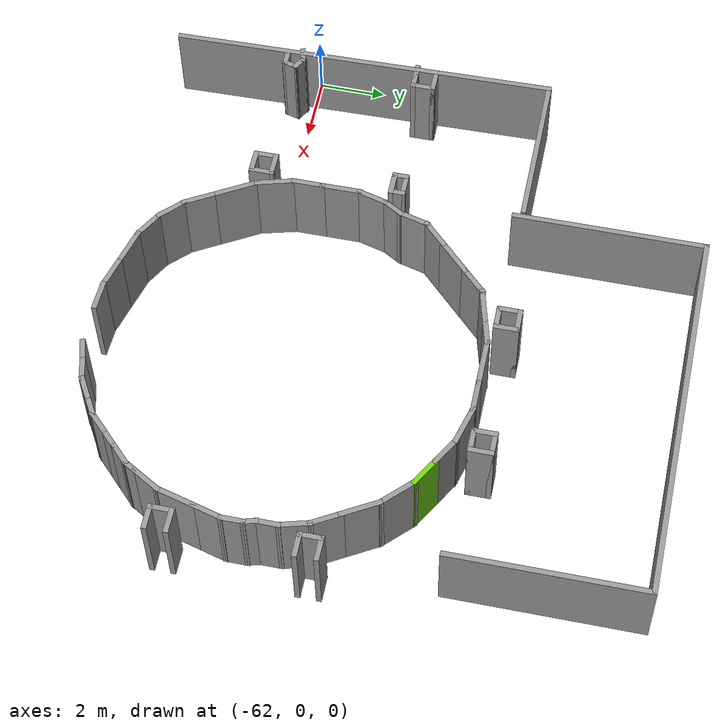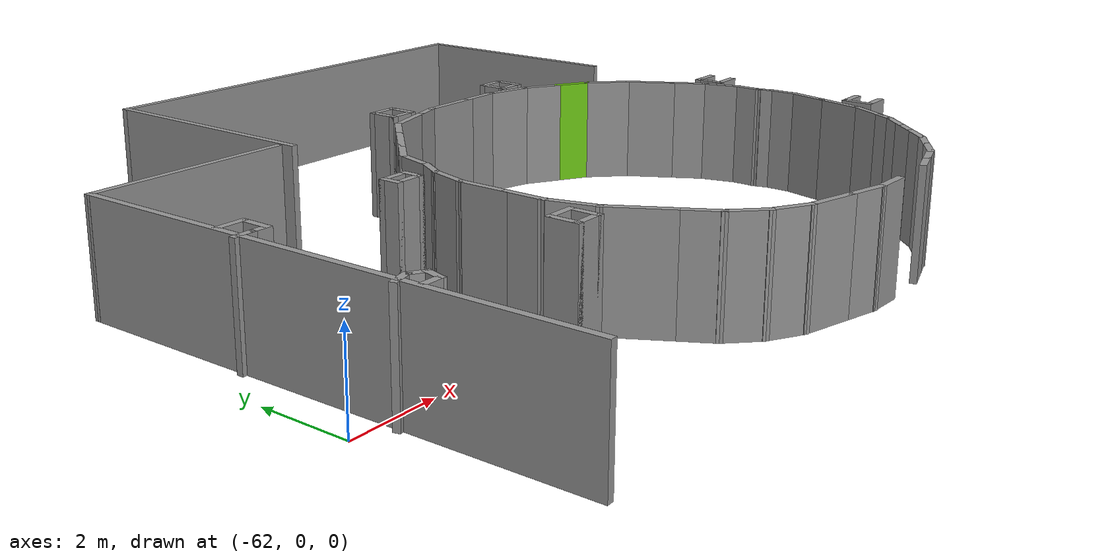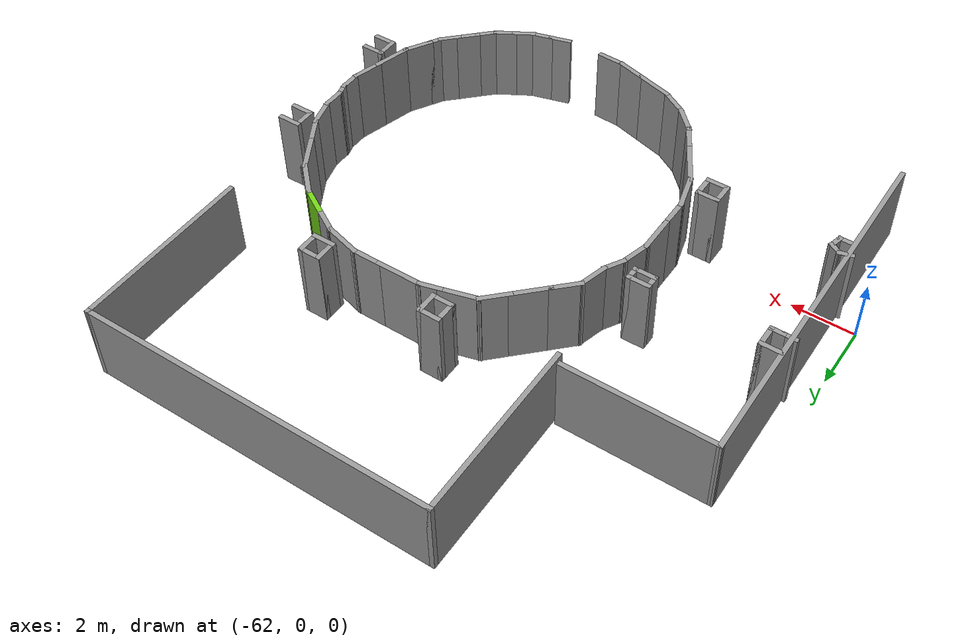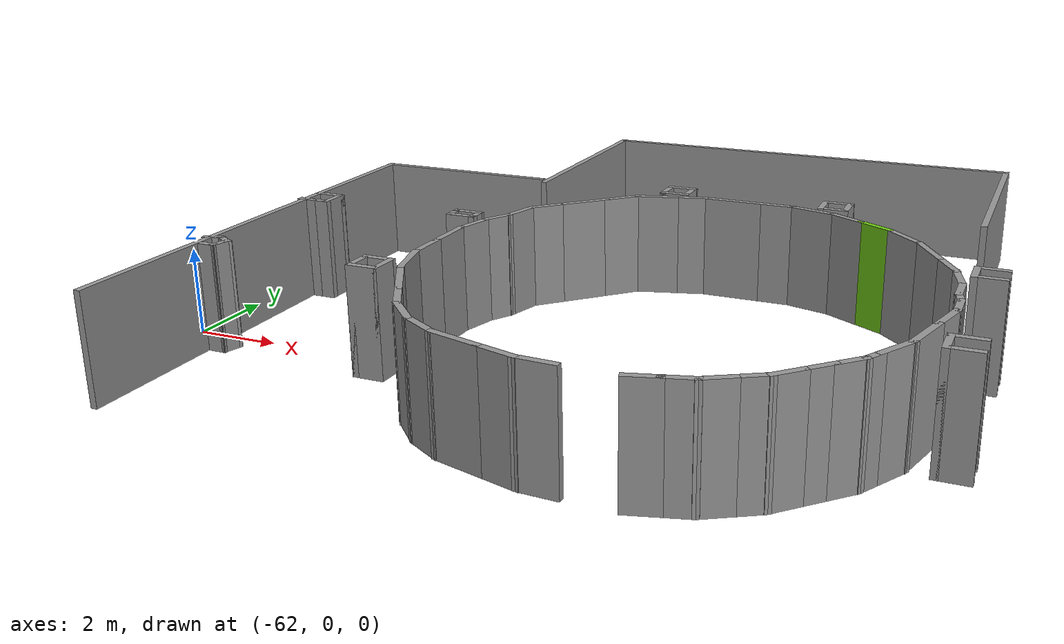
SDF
<sdf version="1.7">
 <model name="TD_n1">
  <pose>-6.74052 -9.30399 0 0 -0 0</pose>
  <link name="Wall_110">
   <collision name="Wall_110_Collision">
    <geometry><box><size>11.5656 0.15 2.5</size></box></geometry>
    <pose>0 0 1.25 0 -0 0</pose>
   </collision>
   <visual name="Wall_110_Visual">
    <pose>0 0 1.25 0 -0 0</pose>
    <geometry><box><size>11.5656 0.15 2.5</size></box></geometry>
    <material>
     <script><uri>file://media/materials/scripts/gazebo.material</uri><name>Gazebo/Grey</name></script>
     <ambient>1 1 1 1</ambient>
    </material>
    <meta><layer>0</layer></meta>
   </visual>
   <pose>-54.4598 10.8475 0 0 -0 -1.5552</pose>
  </link>
  <link name="Wall_113">
   <collision name="Wall_113_Collision">
    <geometry><box><size>4.75 0.15 2.5</size></box></geometry>
    <pose>0 0 1.25 0 -0 0</pose>
   </collision>
   <visual name="Wall_113_Visual">
    <pose>0 0 1.25 0 -0 0</pose>
    <geometry><box><size>4.75 0.15 2.5</size></box></geometry>
    <material>
     <script><uri>file://media/materials/scripts/gazebo.material</uri><name>Gazebo/Grey</name></script>
     <ambient>1 1 1 1</ambient>
    </material>
    <meta><layer>0</layer></meta>
   </visual>
   <pose>-52.2488 16.5545 0 0 -0 0</pose>
  </link>
  <link name="Wall_115">
   <collision name="Wall_115_Collision">
    <geometry><box><size>5.75 0.15 2.5</size></box></geometry>
    <pose>0 0 1.25 0 -0 0</pose>
   </collision>
   <visual name="Wall_115_Visual">
    <pose>0 0 1.25 0 -0 0</pose>
    <geometry><box><size>5.75 0.15 2.5</size></box></geometry>
    <material>
     <script><uri>file://media/materials/scripts/gazebo.material</uri><name>Gazebo/Grey</name></script>
     <ambient>1 1 1 1</ambient>
    </material>
    <meta><layer>0</layer></meta>
   </visual>
   <pose>-49.7376 19.1208 0 0 -0 -1.5708</pose>
  </link>
  <link name="Wall_117">
   <collision name="Wall_117_Collision">
    <geometry><box><size>11.25 0.15 2.5</size></box></geometry>
    <pose>0 0 1.25 0 -0 0</pose>
   </collision>
   <visual name="Wall_117_Visual">
    <pose>0 0 1.25 0 -0 0</pose>
    <geometry><box><size>11.25 0.15 2.5</size></box></geometry>
    <material>
     <script><uri>file://media/materials/scripts/gazebo.material</uri><name>Gazebo/Grey</name></script>
     <ambient>1 1 1 1</ambient>
    </material>
    <meta><layer>0</layer></meta>
   </visual>
   <pose>-44.1876 21.9208 0 0 -0 0</pose>
  </link>
  <link name="Wall_119">
   <collision name="Wall_119_Collision">
    <geometry><box><size>5.75 0.15 2.5</size></box></geometry>
    <pose>0 0 1.25 0 -0 0</pose>
   </collision>
   <visual name="Wall_119_Visual">
    <pose>0 0 1.25 0 -0 0</pose>
    <geometry><box><size>5.75 0.15 2.5</size></box></geometry>
    <material>
     <script><uri>file://media/materials/scripts/gazebo.material</uri><name>Gazebo/Grey</name></script>
     <ambient>1 1 1 1</ambient>
    </material>
    <meta><layer>0</layer></meta>
   </visual>
   <pose>-38.6376 19.1208 0 0 -0 -1.5708</pose>
  </link>
  <link name="Wall_138">
   <collision name="Wall_138_Collision">
    <geometry><box><size>0.75 0.15 2.5</size></box></geometry>
    <pose>0 0 1.25 0 -0 0</pose>
   </collision>
   <visual name="Wall_138_Visual">
    <pose>0 0 1.25 0 -0 0</pose>
    <geometry><box><size>0.75 0.15 2.5</size></box></geometry>
    <material>
     <script><uri>file://media/materials/scripts/gazebo.material</uri><name>Gazebo/Grey</name></script>
     <ambient>1 1 1 1</ambient>
    </material>
    <meta><layer>0</layer></meta>
   </visual>
   <pose>-42.7959 5.32178 0 0 -0 0.261799</pose>
  </link>
  <link name="Wall_139">
   <collision name="Wall_139_Collision">
    <geometry><box><size>0.75 0.15 2.5</size></box></geometry>
    <pose>0 0 1.25 0 -0 0</pose>
   </collision>
   <visual name="Wall_139_Visual">
    <pose>0 0 1.25 0 -0 0</pose>
    <geometry><box><size>0.75 0.15 2.5</size></box></geometry>
    <material>
     <script><uri>file://media/materials/scripts/gazebo.material</uri><name>Gazebo/Grey</name></script>
     <ambient>1 1 1 1</ambient>
    </material>
    <meta><layer>0</layer></meta>
   </visual>
   <pose>-42.2164 5.47707 0 0 -0 0.261799</pose>
  </link>
  <link name="Wall_140">
   <collision name="Wall_140_Collision">
    <geometry><box><size>0.75 0.15 2.5</size></box></geometry>
    <pose>0 0 1.25 0 -0 0</pose>
   </collision>
   <visual name="Wall_140_Visual">
    <pose>0 0 1.25 0 -0 0</pose>
    <geometry><box><size>0.75 0.15 2.5</size></box></geometry>
    <material>
     <script><uri>file://media/materials/scripts/gazebo.material</uri><name>Gazebo/Grey</name></script>
     <ambient>1 1 1 1</ambient>
    </material>
    <meta><layer>0</layer></meta>
   </visual>
   <pose>-41.6668 5.70472 0 0 -0 0.523599</pose>
  </link>
  <link name="Wall_141">
   <collision name="Wall_141_Collision">
    <geometry><box><size>0.75 0.15 2.5</size></box></geometry>
    <pose>0 0 1.25 0 -0 0</pose>
   </collision>
   <visual name="Wall_141_Visual">
    <pose>0 0 1.25 0 -0 0</pose>
    <geometry><box><size>0.75 0.15 2.5</size></box></geometry>
    <material>
     <script><uri>file://media/materials/scripts/gazebo.material</uri><name>Gazebo/Grey</name></script>
     <ambient>1 1 1 1</ambient>
    </material>
    <meta><layer>0</layer></meta>
   </visual>
   <pose>-41.1472 6.00472 0 0 -0 0.523599</pose>
  </link>
  <link name="Wall_142">
   <collision name="Wall_142_Collision">
    <geometry><box><size>0.75 0.15 2.5</size></box></geometry>
    <pose>0 0 1.25 0 -0 0</pose>
   </collision>
   <visual name="Wall_142_Visual">
    <pose>0 0 1.25 0 -0 0</pose>
    <geometry><box><size>0.75 0.15 2.5</size></box></geometry>
    <material>
     <script><uri>file://media/materials/scripts/gazebo.material</uri><name>Gazebo/Grey</name></script>
     <ambient>1 1 1 1</ambient>
    </material>
    <meta><layer>0</layer></meta>
   </visual>
   <pose>-40.6752 6.36685 0 0 -0 0.785398</pose>
  </link>
  <link name="Wall_143">
   <collision name="Wall_143_Collision">
    <geometry><box><size>0.75 0.15 2.5</size></box></geometry>
    <pose>0 0 1.25 0 -0 0</pose>
   </collision>
   <visual name="Wall_143_Visual">
    <pose>0 0 1.25 0 -0 0</pose>
    <geometry><box><size>0.75 0.15 2.5</size></box></geometry>
    <material>
     <script><uri>file://media/materials/scripts/gazebo.material</uri><name>Gazebo/Grey</name></script>
     <ambient>1 1 1 1</ambient>
    </material>
    <meta><layer>0</layer></meta>
   </visual>
   <pose>-40.251 6.79111 0 0 -0 0.785398</pose>
  </link>
  <link name="Wall_144">
   <collision name="Wall_144_Collision">
    <geometry><box><size>0.75 0.15 2.5</size></box></geometry>
    <pose>0 0 1.25 0 -0 0</pose>
   </collision>
   <visual name="Wall_144_Visual">
    <pose>0 0 1.25 0 -0 0</pose>
    <geometry><box><size>0.75 0.15 2.5</size></box></geometry>
    <material>
     <script><uri>file://media/materials/scripts/gazebo.material</uri><name>Gazebo/Grey</name></script>
     <ambient>1 1 1 1</ambient>
    </material>
    <meta><layer>0</layer></meta>
   </visual>
   <pose>-39.8267 7.21538 0 0 -0 0.785398</pose>
  </link>
  <link name="Wall_145">
   <collision name="Wall_145_Collision">
    <geometry><box><size>0.5 0.15 2.5</size></box></geometry>
    <pose>0 0 1.25 0 -0 0</pose>
   </collision>
   <visual name="Wall_145_Visual">
    <pose>0 0 1.25 0 -0 0</pose>
    <geometry><box><size>0.5 0.15 2.5</size></box></geometry>
    <material>
     <script><uri>file://media/materials/scripts/gazebo.material</uri><name>Gazebo/Grey</name></script>
     <ambient>1 1 1 1</ambient>
    </material>
    <meta><layer>0</layer></meta>
   </visual>
   <pose>-39.5271 7.57906 0 0 -0 1.0472</pose>
  </link>
  <link name="Wall_146">
   <collision name="Wall_146_Collision">
    <geometry><box><size>1 0.15 2.5</size></box></geometry>
    <pose>0 0 1.25 0 -0 0</pose>
   </collision>
   <visual name="Wall_146_Visual">
    <pose>0 0 1.25 0 -0 0</pose>
    <geometry><box><size>1 0.15 2.5</size></box></geometry>
    <material>
     <script><uri>file://media/materials/scripts/gazebo.material</uri><name>Gazebo/Grey</name></script>
     <ambient>1 1 1 1</ambient>
    </material>
    <meta><layer>0</layer></meta>
   </visual>
   <pose>-39.2271 8.09868 0 0 -0 1.0472</pose>
  </link>
  <link name="Wall_147">
   <collision name="Wall_147_Collision">
    <geometry><box><size>1.25 0.15 2.5</size></box></geometry>
    <pose>0 0 1.25 0 -0 0</pose>
   </collision>
   <visual name="Wall_147_Visual">
    <pose>0 0 1.25 0 -0 0</pose>
    <geometry><box><size>1.25 0.15 2.5</size></box></geometry>
    <material>
     <script><uri>file://media/materials/scripts/gazebo.material</uri><name>Gazebo/Grey</name></script>
     <ambient>1 1 1 1</ambient>
    </material>
    <meta><layer>0</layer></meta>
   </visual>
   <pose>-38.8722 8.998 0 0 -0 1.309</pose>
  </link>
  <link name="Wall_148">
   <collision name="Wall_148_Collision">
    <geometry><box><size>1 0.15 2.5</size></box></geometry>
    <pose>0 0 1.25 0 -0 0</pose>
   </collision>
   <visual name="Wall_148_Visual">
    <pose>0 0 1.25 0 -0 0</pose>
    <geometry><box><size>1 0.15 2.5</size></box></geometry>
    <material>
     <script><uri>file://media/materials/scripts/gazebo.material</uri><name>Gazebo/Grey</name></script>
     <ambient>1 1 1 1</ambient>
    </material>
    <meta><layer>0</layer></meta>
   </visual>
   <pose>-38.6199 9.93978 0 0 -0 1.309</pose>
  </link>
  <link name="Wall_149">
   <collision name="Wall_149_Collision">
    <geometry><box><size>0.75 0.15 2.5</size></box></geometry>
    <pose>0 0 1.25 0 -0 0</pose>
   </collision>
   <visual name="Wall_149_Visual">
    <pose>0 0 1.25 0 -0 0</pose>
    <geometry><box><size>0.75 0.15 2.5</size></box></geometry>
    <material>
     <script><uri>file://media/materials/scripts/gazebo.material</uri><name>Gazebo/Grey</name></script>
     <ambient>1 1 1 1</ambient>
    </material>
    <meta><layer>0</layer></meta>
   </visual>
   <pose>-38.5099 10.6503 0 0 -0 1.5708</pose>
  </link>
  <link name="Wall_150">
   <collision name="Wall_150_Collision">
    <geometry><box><size>0.5 0.15 2.5</size></box></geometry>
    <pose>0 0 1.25 0 -0 0</pose>
   </collision>
   <visual name="Wall_150_Visual">
    <pose>0 0 1.25 0 -0 0</pose>
    <geometry><box><size>0.5 0.15 2.5</size></box></geometry>
    <material>
     <script><uri>file://media/materials/scripts/gazebo.material</uri><name>Gazebo/Grey</name></script>
     <ambient>1 1 1 1</ambient>
    </material>
    <meta><layer>0</layer></meta>
   </visual>
   <pose>-38.5552 11.1193 0 0 -0 1.8326</pose>
  </link>
  <link name="Wall_153">
   <collision name="Wall_153_Collision">
    <geometry><box><size>0.75 0.15 2.5</size></box></geometry>
    <pose>0 0 1.25 0 -0 0</pose>
   </collision>
   <visual name="Wall_153_Visual">
    <pose>0 0 1.25 0 -0 0</pose>
    <geometry><box><size>0.75 0.15 2.5</size></box></geometry>
    <material>
     <script><uri>file://media/materials/scripts/gazebo.material</uri><name>Gazebo/Grey</name></script>
     <ambient>1 1 1 1</ambient>
    </material>
    <meta><layer>0</layer></meta>
   </visual>
   <pose>-38.6005 11.5884 0 0 -0 1.5708</pose>
  </link>
  <link name="Wall_154">
   <collision name="Wall_154_Collision">
    <geometry><box><size>1 0.15 2.5</size></box></geometry>
    <pose>0 0 1.25 0 -0 0</pose>
   </collision>
   <visual name="Wall_154_Visual">
    <pose>0 0 1.25 0 -0 0</pose>
    <geometry><box><size>1 0.15 2.5</size></box></geometry>
    <material>
     <script><uri>file://media/materials/scripts/gazebo.material</uri><name>Gazebo/Grey</name></script>
     <ambient>1 1 1 1</ambient>
    </material>
    <meta><layer>0</layer></meta>
   </visual>
   <pose>-38.7105 12.2989 0 0 -0 1.8326</pose>
  </link>
  <link name="Wall_155">
   <collision name="Wall_155_Collision">
    <geometry><box><size>1 0.15 2.5</size></box></geometry>
    <pose>0 0 1.25 0 -0 0</pose>
   </collision>
   <visual name="Wall_155_Visual">
    <pose>0 0 1.25 0 -0 0</pose>
    <geometry><box><size>1 0.15 2.5</size></box></geometry>
    <material>
     <script><uri>file://media/materials/scripts/gazebo.material</uri><name>Gazebo/Grey</name></script>
     <ambient>1 1 1 1</ambient>
    </material>
    <meta><layer>0</layer></meta>
   </visual>
   <pose>-39.033 13.0775 0 0 -0 2.0944</pose>
  </link>
  <link name="Wall_156">
   <collision name="Wall_156_Collision">
    <geometry><box><size>1.25 0.15 2.5</size></box></geometry>
    <pose>0 0 1.25 0 -0 0</pose>
   </collision>
   <visual name="Wall_156_Visual">
    <pose>0 0 1.25 0 -0 0</pose>
    <geometry><box><size>1.25 0.15 2.5</size></box></geometry>
    <material>
     <script><uri>file://media/materials/scripts/gazebo.material</uri><name>Gazebo/Grey</name></script>
     <ambient>1 1 1 1</ambient>
    </material>
    <meta><layer>0</layer></meta>
   </visual>
   <pose>-39.5205 13.9218 0 0 -0 2.0944</pose>
  </link>
  <link name="Wall_157">
   <collision name="Wall_157_Collision">
    <geometry><box><size>1.25 0.15 2.5</size></box></geometry>
    <pose>0 0 1.25 0 -0 0</pose>
   </collision>
   <visual name="Wall_157_Visual">
    <pose>0 0 1.25 0 -0 0</pose>
    <geometry><box><size>1.25 0.15 2.5</size></box></geometry>
    <material>
     <script><uri>file://media/materials/scripts/gazebo.material</uri><name>Gazebo/Grey</name></script>
     <ambient>1 1 1 1</ambient>
    </material>
    <meta><layer>0</layer></meta>
   </visual>
   <pose>-40.1844 14.7871 0 0 -0 2.35619</pose>
  </link>
  <link name="Wall_158">
   <collision name="Wall_158_Collision">
    <geometry><box><size>1 0.15 2.5</size></box></geometry>
    <pose>0 0 1.25 0 -0 0</pose>
   </collision>
   <visual name="Wall_158_Visual">
    <pose>0 0 1.25 0 -0 0</pose>
    <geometry><box><size>1 0.15 2.5</size></box></geometry>
    <material>
     <script><uri>file://media/materials/scripts/gazebo.material</uri><name>Gazebo/Grey</name></script>
     <ambient>0.45098 0.823529 0.0862745 1</ambient>
    </material>
    <meta><layer>0</layer></meta>
   </visual>
   <pose>-40.9413 15.3885 0 0 -0 2.61799</pose>
  </link>
  <link name="Wall_159">
   <collision name="Wall_159_Collision">
    <geometry><box><size>1 0.15 2.5</size></box></geometry>
    <pose>0 0 1.25 0 -0 0</pose>
   </collision>
   <visual name="Wall_159_Visual">
    <pose>0 0 1.25 0 -0 0</pose>
    <geometry><box><size>1 0.15 2.5</size></box></geometry>
    <material>
     <script><uri>file://media/materials/scripts/gazebo.material</uri><name>Gazebo/Grey</name></script>
     <ambient>1 1 1 1</ambient>
    </material>
    <meta><layer>0</layer></meta>
   </visual>
   <pose>-41.6775 15.8135 0 0 -0 2.61799</pose>
  </link>
  <link name="Wall_160">
   <collision name="Wall_160_Collision">
    <geometry><box><size>1.25 0.15 2.5</size></box></geometry>
    <pose>0 0 1.25 0 -0 0</pose>
   </collision>
   <visual name="Wall_160_Visual">
    <pose>0 0 1.25 0 -0 0</pose>
    <geometry><box><size>1.25 0.15 2.5</size></box></geometry>
    <material>
     <script><uri>file://media/materials/scripts/gazebo.material</uri><name>Gazebo/Grey</name></script>
     <ambient>1 1 1 1</ambient>
    </material>
    <meta><layer>0</layer></meta>
   </visual>
   <pose>-42.5768 16.1683 0 0 -0 2.87979</pose>
  </link>
  <link name="Wall_161">
   <collision name="Wall_161_Collision">
    <geometry><box><size>1 0.15 2.5</size></box></geometry>
    <pose>0 0 1.25 0 -0 0</pose>
   </collision>
   <visual name="Wall_161_Visual">
    <pose>0 0 1.25 0 -0 0</pose>
    <geometry><box><size>1 0.15 2.5</size></box></geometry>
    <material>
     <script><uri>file://media/materials/scripts/gazebo.material</uri><name>Gazebo/Grey</name></script>
     <ambient>1 1 1 1</ambient>
    </material>
    <meta><layer>0</layer></meta>
   </visual>
   <pose>-43.533 16.3107 0 0 -0 3.14159</pose>
  </link>
  <link name="Wall_162">
   <collision name="Wall_162_Collision">
    <geometry><box><size>1.5 0.15 2.5</size></box></geometry>
    <pose>0 0 1.25 0 -0 0</pose>
   </collision>
   <visual name="Wall_162_Visual">
    <pose>0 0 1.25 0 -0 0</pose>
    <geometry><box><size>1.5 0.15 2.5</size></box></geometry>
    <material>
     <script><uri>file://media/materials/scripts/gazebo.material</uri><name>Gazebo/Grey</name></script>
     <ambient>1 1 1 1</ambient>
    </material>
    <meta><layer>0</layer></meta>
   </visual>
   <pose>-44.633 16.3107 0 0 -0 3.14159</pose>
  </link>
  <link name="Wall_163">
   <collision name="Wall_163_Collision">
    <geometry><box><size>0.75 0.15 2.5</size></box></geometry>
    <pose>0 0 1.25 0 -0 0</pose>
   </collision>
   <visual name="Wall_163_Visual">
    <pose>0 0 1.25 0 -0 0</pose>
    <geometry><box><size>0.75 0.15 2.5</size></box></geometry>
    <material>
     <script><uri>file://media/materials/scripts/gazebo.material</uri><name>Gazebo/Grey</name></script>
     <ambient>1 1 1 1</ambient>
    </material>
    <meta><layer>0</layer></meta>
   </visual>
   <pose>-45.5978 16.233 0 0 -0 -2.87979</pose>
  </link>
  <link name="Wall_164">
   <collision name="Wall_164_Collision">
    <geometry><box><size>1.25 0.15 2.5</size></box></geometry>
    <pose>0 0 1.25 0 -0 0</pose>
   </collision>
   <visual name="Wall_164_Visual">
    <pose>0 0 1.25 0 -0 0</pose>
    <geometry><box><size>1.25 0.15 2.5</size></box></geometry>
    <material>
     <script><uri>file://media/materials/scripts/gazebo.material</uri><name>Gazebo/Grey</name></script>
     <ambient>1 1 1 1</ambient>
    </material>
    <meta><layer>0</layer></meta>
   </visual>
   <pose>-46.4189 16.013 0 0 -0 -2.87979</pose>
  </link>
  <link name="Wall_165">
   <collision name="Wall_165_Collision">
    <geometry><box><size>1 0.15 2.5</size></box></geometry>
    <pose>0 0 1.25 0 -0 0</pose>
   </collision>
   <visual name="Wall_165_Visual">
    <pose>0 0 1.25 0 -0 0</pose>
    <geometry><box><size>1 0.15 2.5</size></box></geometry>
    <material>
     <script><uri>file://media/materials/scripts/gazebo.material</uri><name>Gazebo/Grey</name></script>
     <ambient>1 1 1 1</ambient>
    </material>
    <meta><layer>0</layer></meta>
   </visual>
   <pose>-47.2506 15.5702 0 0 -0 -2.35619</pose>
  </link>
  <link name="Wall_166">
   <collision name="Wall_166_Collision">
    <geometry><box><size>1.25 0.15 2.5</size></box></geometry>
    <pose>0 0 1.25 0 -0 0</pose>
   </collision>
   <visual name="Wall_166_Visual">
    <pose>0 0 1.25 0 -0 0</pose>
    <geometry><box><size>1.25 0.15 2.5</size></box></geometry>
    <material>
     <script><uri>file://media/materials/scripts/gazebo.material</uri><name>Gazebo/Grey</name></script>
     <ambient>1 1 1 1</ambient>
    </material>
    <meta><layer>0</layer></meta>
   </visual>
   <pose>-47.9401 14.8807 0 0 -0 -2.35619</pose>
  </link>
  <link name="Wall_167">
   <collision name="Wall_167_Collision">
    <geometry><box><size>1 0.15 2.5</size></box></geometry>
    <pose>0 0 1.25 0 -0 0</pose>
   </collision>
   <visual name="Wall_167_Visual">
    <pose>0 0 1.25 0 -0 0</pose>
    <geometry><box><size>1 0.15 2.5</size></box></geometry>
    <material>
     <script><uri>file://media/materials/scripts/gazebo.material</uri><name>Gazebo/Grey</name></script>
     <ambient>1 1 1 1</ambient>
    </material>
    <meta><layer>0</layer></meta>
   </visual>
   <pose>-48.6295 14.1913 0 0 -0 -2.35619</pose>
  </link>
  <link name="Wall_168">
   <collision name="Wall_168_Collision">
    <geometry><box><size>1 0.15 2.5</size></box></geometry>
    <pose>0 0 1.25 0 -0 0</pose>
   </collision>
   <visual name="Wall_168_Visual">
    <pose>0 0 1.25 0 -0 0</pose>
    <geometry><box><size>1 0.15 2.5</size></box></geometry>
    <material>
     <script><uri>file://media/materials/scripts/gazebo.material</uri><name>Gazebo/Grey</name></script>
     <ambient>1 1 1 1</ambient>
    </material>
    <meta><layer>0</layer></meta>
   </visual>
   <pose>-49.04 13.4803 0 0 -0 -1.8326</pose>
  </link>
  <link name="Wall_169">
   <collision name="Wall_169_Collision">
    <geometry><box><size>0.75 0.15 2.5</size></box></geometry>
    <pose>0 0 1.25 0 -0 0</pose>
   </collision>
   <visual name="Wall_169_Visual">
    <pose>0 0 1.25 0 -0 0</pose>
    <geometry><box><size>0.75 0.15 2.5</size></box></geometry>
    <material>
     <script><uri>file://media/materials/scripts/gazebo.material</uri><name>Gazebo/Grey</name></script>
     <ambient>1 1 1 1</ambient>
    </material>
    <meta><layer>0</layer></meta>
   </visual>
   <pose>-49.3 12.8099 0 0 -0 -2.0944</pose>
  </link>
  <link name="Wall_170">
   <collision name="Wall_170_Collision">
    <geometry><box><size>1 0.15 2.5</size></box></geometry>
    <pose>0 0 1.25 0 -0 0</pose>
   </collision>
   <visual name="Wall_170_Visual">
    <pose>0 0 1.25 0 -0 0</pose>
    <geometry><box><size>1 0.15 2.5</size></box></geometry>
    <material>
     <script><uri>file://media/materials/scripts/gazebo.material</uri><name>Gazebo/Grey</name></script>
     <ambient>1 1 1 1</ambient>
    </material>
    <meta><layer>0</layer></meta>
   </visual>
   <pose>-49.56 12.1396 0 0 -0 -1.8326</pose>
  </link>
  <link name="Wall_171">
   <collision name="Wall_171_Collision">
    <geometry><box><size>1.25 0.15 2.5</size></box></geometry>
    <pose>0 0 1.25 0 -0 0</pose>
   </collision>
   <visual name="Wall_171_Visual">
    <pose>0 0 1.25 0 -0 0</pose>
    <geometry><box><size>1.25 0.15 2.5</size></box></geometry>
    <material>
     <script><uri>file://media/materials/scripts/gazebo.material</uri><name>Gazebo/Grey</name></script>
     <ambient>1 1 1 1</ambient>
    </material>
    <meta><layer>0</layer></meta>
   </visual>
   <pose>-49.67 11.1791 0 0 -0 -1.5708</pose>
  </link>
  <link name="Wall_172">
   <collision name="Wall_172_Collision">
    <geometry><box><size>1 0.15 2.5</size></box></geometry>
    <pose>0 0 1.25 0 -0 0</pose>
   </collision>
   <visual name="Wall_172_Visual">
    <pose>0 0 1.25 0 -0 0</pose>
    <geometry><box><size>1 0.15 2.5</size></box></geometry>
    <material>
     <script><uri>file://media/materials/scripts/gazebo.material</uri><name>Gazebo/Grey</name></script>
     <ambient>1 1 1 1</ambient>
    </material>
    <meta><layer>0</layer></meta>
   </visual>
   <pose>-49.67 10.2041 0 0 -0 -1.5708</pose>
  </link>
  <link name="Wall_173">
   <collision name="Wall_173_Collision">
    <geometry><box><size>1.25 0.15 2.5</size></box></geometry>
    <pose>0 0 1.25 0 -0 0</pose>
   </collision>
   <visual name="Wall_173_Visual">
    <pose>0 0 1.25 0 -0 0</pose>
    <geometry><box><size>1.25 0.15 2.5</size></box></geometry>
    <material>
     <script><uri>file://media/materials/scripts/gazebo.material</uri><name>Gazebo/Grey</name></script>
     <ambient>1 1 1 1</ambient>
    </material>
    <meta><layer>0</layer></meta>
   </visual>
   <pose>-49.5277 9.24783 0 0 -0 -1.309</pose>
  </link>
  <link name="Wall_174">
   <collision name="Wall_174_Collision">
    <geometry><box><size>1.5 0.15 2.5</size></box></geometry>
    <pose>0 0 1.25 0 -0 0</pose>
   </collision>
   <visual name="Wall_174_Visual">
    <pose>0 0 1.25 0 -0 0</pose>
    <geometry><box><size>1.5 0.15 2.5</size></box></geometry>
    <material>
     <script><uri>file://media/materials/scripts/gazebo.material</uri><name>Gazebo/Grey</name></script>
     <ambient>1 1 1 1</ambient>
    </material>
    <meta><layer>0</layer></meta>
   </visual>
   <pose>-49.0478 8.13201 0 0 -0 -1.0472</pose>
  </link>
  <link name="Wall_178">
   <collision name="Wall_178_Collision">
    <geometry><box><size>1 0.15 2.5</size></box></geometry>
    <pose>0 0 1.25 0 -0 0</pose>
   </collision>
   <visual name="Wall_178_Visual">
    <pose>0 0 1.25 0 -0 0</pose>
    <geometry><box><size>1 0.15 2.5</size></box></geometry>
    <material>
     <script><uri>file://media/materials/scripts/gazebo.material</uri><name>Gazebo/Grey</name></script>
     <ambient>1 1 1 1</ambient>
    </material>
    <meta><layer>0</layer></meta>
   </visual>
   <pose>-48.4978 7.17938 0 0 -0 -1.0472</pose>
  </link>
  <link name="Wall_179">
   <collision name="Wall_179_Collision">
    <geometry><box><size>1 0.15 2.5</size></box></geometry>
    <pose>0 0 1.25 0 -0 0</pose>
   </collision>
   <visual name="Wall_179_Visual">
    <pose>0 0 1.25 0 -0 0</pose>
    <geometry><box><size>1 0.15 2.5</size></box></geometry>
    <material>
     <script><uri>file://media/materials/scripts/gazebo.material</uri><name>Gazebo/Grey</name></script>
     <ambient>1 1 1 1</ambient>
    </material>
    <meta><layer>0</layer></meta>
   </visual>
   <pose>-47.9848 6.5108 0 0 -0 -0.785398</pose>
  </link>
  <link name="Wall_180">
   <collision name="Wall_180_Collision">
    <geometry><box><size>1 0.15 2.5</size></box></geometry>
    <pose>0 0 1.25 0 -0 0</pose>
   </collision>
   <visual name="Wall_180_Visual">
    <pose>0 0 1.25 0 -0 0</pose>
    <geometry><box><size>1 0.15 2.5</size></box></geometry>
    <material>
     <script><uri>file://media/materials/scripts/gazebo.material</uri><name>Gazebo/Grey</name></script>
     <ambient>1 1 1 1</ambient>
    </material>
    <meta><layer>0</layer></meta>
   </visual>
   <pose>-47.3162 5.99778 0 0 -0 -0.523599</pose>
  </link>
  <link name="Wall_181">
   <collision name="Wall_181_Collision">
    <geometry><box><size>1.25 0.15 2.5</size></box></geometry>
    <pose>0 0 1.25 0 -0 0</pose>
   </collision>
   <visual name="Wall_181_Visual">
    <pose>0 0 1.25 0 -0 0</pose>
    <geometry><box><size>1.25 0.15 2.5</size></box></geometry>
    <material>
     <script><uri>file://media/materials/scripts/gazebo.material</uri><name>Gazebo/Grey</name></script>
     <ambient>1 1 1 1</ambient>
    </material>
    <meta><layer>0</layer></meta>
   </visual>
   <pose>-46.4169 5.64293 0 0 -0 -0.261799</pose>
  </link>
  <link name="Wall_182">
   <collision name="Wall_182_Collision">
    <geometry><box><size>1 0.15 2.5</size></box></geometry>
    <pose>0 0 1.25 0 -0 0</pose>
   </collision>
   <visual name="Wall_182_Visual">
    <pose>0 0 1.25 0 -0 0</pose>
    <geometry><box><size>1 0.15 2.5</size></box></geometry>
    <material>
     <script><uri>file://media/materials/scripts/gazebo.material</uri><name>Gazebo/Grey</name></script>
     <ambient>1 1 1 1</ambient>
    </material>
    <meta><layer>0</layer></meta>
   </visual>
   <pose>-45.4751 5.39058 0 0 -0 -0.261799</pose>
  </link>
  <link name="Wall_183">
   <collision name="Wall_183_Collision">
    <geometry><box><size>0.92973 0.15 2.5</size></box></geometry>
    <pose>0 0 1.25 0 -0 0</pose>
   </collision>
   <visual name="Wall_183_Visual">
    <pose>0 0 1.25 0 -0 0</pose>
    <geometry><box><size>0.92973 0.15 2.5</size></box></geometry>
    <material>
     <script><uri>file://media/materials/scripts/gazebo.material</uri><name>Gazebo/Grey</name></script>
     <ambient>1 1 1 1</ambient>
    </material>
    <meta><layer>0</layer></meta>
   </visual>
   <pose>-44.6752 5.26236 0 0 -0 -0.04676</pose>
  </link>
  <link name="Wall_193">
   <collision name="Wall_193_Collision">
    <geometry><box><size>0.5 0.15 2.5</size></box></geometry>
    <pose>0 0 1.25 0 -0 0</pose>
   </collision>
   <visual name="Wall_193_Visual">
    <pose>0 0 1.25 0 -0 0</pose>
    <geometry><box><size>0.5 0.15 2.5</size></box></geometry>
    <material>
     <script><uri>file://media/materials/scripts/gazebo.material</uri><name>Gazebo/Grey</name></script>
     <ambient>1 1 1 1</ambient>
    </material>
    <meta><layer>0</layer></meta>
   </visual>
   <pose>-54.1547 8.51267 0 0 -0 0</pose>
  </link>
  <link name="Wall_194">
   <collision name="Wall_194_Collision">
    <geometry><box><size>0.5 0.15 2.5</size></box></geometry>
    <pose>0 0 1.25 0 -0 0</pose>
   </collision>
   <visual name="Wall_194_Visual">
    <pose>0 0 1.25 0 -0 0</pose>
    <geometry><box><size>0.5 0.15 2.5</size></box></geometry>
    <material>
     <script><uri>file://media/materials/scripts/gazebo.material</uri><name>Gazebo/Grey</name></script>
     <ambient>1 1 1 1</ambient>
    </material>
    <meta><layer>0</layer></meta>
   </visual>
   <pose>-53.9344 8.68171 0 0 -0 1.309</pose>
  </link>
  <link name="Wall_195">
   <collision name="Wall_195_Collision">
    <geometry><box><size>0.5 0.15 2.5</size></box></geometry>
    <pose>0 0 1.25 0 -0 0</pose>
   </collision>
   <visual name="Wall_195_Visual">
    <pose>0 0 1.25 0 -0 0</pose>
    <geometry><box><size>0.5 0.15 2.5</size></box></geometry>
    <material>
     <script><uri>file://media/materials/scripts/gazebo.material</uri><name>Gazebo/Grey</name></script>
     <ambient>1 1 1 1</ambient>
    </material>
    <meta><layer>0</layer></meta>
   </visual>
   <pose>-54.0406 8.93825 0 0 -0 2.61799</pose>
  </link>
  <link name="Wall_196">
   <collision name="Wall_196_Collision">
    <geometry><box><size>0.15 0.15 2.5</size></box></geometry>
    <pose>0 0 1.25 0 -0 0</pose>
   </collision>
   <visual name="Wall_196_Visual">
    <pose>0 0 1.25 0 -0 0</pose>
    <geometry><box><size>0.15 0.15 2.5</size></box></geometry>
    <material>
     <script><uri>file://media/materials/scripts/gazebo.material</uri><name>Gazebo/Grey</name></script>
     <ambient>1 1 1 1</ambient>
    </material>
    <meta><layer>0</layer></meta>
   </visual>
   <pose>-54.1922 9.02575 0 0 -0 0</pose>
  </link>
  <link name="Wall_197">
   <collision name="Wall_197_Collision">
    <geometry><box><size>0.5 0.15 2.5</size></box></geometry>
    <pose>0 0 1.25 0 -0 0</pose>
   </collision>
   <visual name="Wall_197_Visual">
    <pose>0 0 1.25 0 -0 0</pose>
    <geometry><box><size>0.5 0.15 2.5</size></box></geometry>
    <material>
     <script><uri>file://media/materials/scripts/gazebo.material</uri><name>Gazebo/Grey</name></script>
     <ambient>1 1 1 1</ambient>
    </material>
    <meta><layer>0</layer></meta>
   </visual>
   <pose>-54.3612 8.98045 0 0 -0 -2.87979</pose>
  </link>
  <link name="Wall_199">
   <collision name="Wall_199_Collision">
    <geometry><box><size>0.75 0.15 2.5</size></box></geometry>
    <pose>0 0 1.25 0 -0 0</pose>
   </collision>
   <visual name="Wall_199_Visual">
    <pose>0 0 1.25 0 -0 0</pose>
    <geometry><box><size>0.75 0.15 2.5</size></box></geometry>
    <material>
     <script><uri>file://media/materials/scripts/gazebo.material</uri><name>Gazebo/Grey</name></script>
     <ambient>1 1 1 1</ambient>
    </material>
    <meta><layer>0</layer></meta>
   </visual>
   <pose>-54.1817 13.1057 0 0 -0 0</pose>
  </link>
  <link name="Wall_200">
   <collision name="Wall_200_Collision">
    <geometry><box><size>0.75 0.15 2.5</size></box></geometry>
    <pose>0 0 1.25 0 -0 0</pose>
   </collision>
   <visual name="Wall_200_Visual">
    <pose>0 0 1.25 0 -0 0</pose>
    <geometry><box><size>0.75 0.15 2.5</size></box></geometry>
    <material>
     <script><uri>file://media/materials/scripts/gazebo.material</uri><name>Gazebo/Grey</name></script>
     <ambient>1 1 1 1</ambient>
    </material>
    <meta><layer>0</layer></meta>
   </visual>
   <pose>-53.8817 12.8057 0 0 -0 -1.5708</pose>
  </link>
  <link name="Wall_201">
   <collision name="Wall_201_Collision">
    <geometry><box><size>0.5 0.15 2.5</size></box></geometry>
    <pose>0 0 1.25 0 -0 0</pose>
   </collision>
   <visual name="Wall_201_Visual">
    <pose>0 0 1.25 0 -0 0</pose>
    <geometry><box><size>0.5 0.15 2.5</size></box></geometry>
    <material>
     <script><uri>file://media/materials/scripts/gazebo.material</uri><name>Gazebo/Grey</name></script>
     <ambient>1 1 1 1</ambient>
    </material>
    <meta><layer>0</layer></meta>
   </visual>
   <pose>-54.0567 12.5057 0 0 -0 3.14159</pose>
  </link>
  <link name="Wall_202">
   <collision name="Wall_202_Collision">
    <geometry><box><size>0.5 0.15 2.5</size></box></geometry>
    <pose>0 0 1.25 0 -0 0</pose>
   </collision>
   <visual name="Wall_202_Visual">
    <pose>0 0 1.25 0 -0 0</pose>
    <geometry><box><size>0.5 0.15 2.5</size></box></geometry>
    <material>
     <script><uri>file://media/materials/scripts/gazebo.material</uri><name>Gazebo/Grey</name></script>
     <ambient>1 1 1 1</ambient>
    </material>
    <meta><layer>0</layer></meta>
   </visual>
   <pose>-54.4067 12.5057 0 0 -0 3.14159</pose>
  </link>
  <link name="Wall_204">
   <collision name="Wall_204_Collision">
    <geometry><box><size>0.5 0.15 2.5</size></box></geometry>
    <pose>0 0 1.25 0 -0 0</pose>
   </collision>
   <visual name="Wall_204_Visual">
    <pose>0 0 1.25 0 -0 0</pose>
    <geometry><box><size>0.5 0.15 2.5</size></box></geometry>
    <material>
     <script><uri>file://media/materials/scripts/gazebo.material</uri><name>Gazebo/Grey</name></script>
     <ambient>1 1 1 1</ambient>
    </material>
    <meta><layer>0</layer></meta>
   </visual>
   <pose>-50.4682 12.8105 0 0 -0 -1.5708</pose>
  </link>
  <link name="Wall_205">
   <collision name="Wall_205_Collision">
    <geometry><box><size>0.75 0.15 2.5</size></box></geometry>
    <pose>0 0 1.25 0 -0 0</pose>
   </collision>
   <visual name="Wall_205_Visual">
    <pose>0 0 1.25 0 -0 0</pose>
    <geometry><box><size>0.75 0.15 2.5</size></box></geometry>
    <material>
     <script><uri>file://media/materials/scripts/gazebo.material</uri><name>Gazebo/Grey</name></script>
     <ambient>1 1 1 1</ambient>
    </material>
    <meta><layer>0</layer></meta>
   </visual>
   <pose>-50.1682 12.6355 0 0 -0 0</pose>
  </link>
  <link name="Wall_206">
   <collision name="Wall_206_Collision">
    <geometry><box><size>0.5 0.15 2.5</size></box></geometry>
    <pose>0 0 1.25 0 -0 0</pose>
   </collision>
   <visual name="Wall_206_Visual">
    <pose>0 0 1.25 0 -0 0</pose>
    <geometry><box><size>0.5 0.15 2.5</size></box></geometry>
    <material>
     <script><uri>file://media/materials/scripts/gazebo.material</uri><name>Gazebo/Grey</name></script>
     <ambient>1 1 1 1</ambient>
    </material>
    <meta><layer>0</layer></meta>
   </visual>
   <pose>-49.8682 12.8105 0 0 -0 1.5708</pose>
  </link>
  <link name="Wall_207">
   <collision name="Wall_207_Collision">
    <geometry><box><size>0.75 0.15 2.5</size></box></geometry>
    <pose>0 0 1.25 0 -0 0</pose>
   </collision>
   <visual name="Wall_207_Visual">
    <pose>0 0 1.25 0 -0 0</pose>
    <geometry><box><size>0.75 0.15 2.5</size></box></geometry>
    <material>
     <script><uri>file://media/materials/scripts/gazebo.material</uri><name>Gazebo/Grey</name></script>
     <ambient>1 1 1 1</ambient>
    </material>
    <meta><layer>0</layer></meta>
   </visual>
   <pose>-50.1682 12.9855 0 0 -0 3.14159</pose>
  </link>
  <link name="Wall_209">
   <collision name="Wall_209_Collision">
    <geometry><box><size>0.75 0.15 2.5</size></box></geometry>
    <pose>0 0 1.25 0 -0 0</pose>
   </collision>
   <visual name="Wall_209_Visual">
    <pose>0 0 1.25 0 -0 0</pose>
    <geometry><box><size>0.75 0.15 2.5</size></box></geometry>
    <material>
     <script><uri>file://media/materials/scripts/gazebo.material</uri><name>Gazebo/Grey</name></script>
     <ambient>1 1 1 1</ambient>
    </material>
    <meta><layer>0</layer></meta>
   </visual>
   <pose>-50.438 8.75359 0 0 -0 -1.5708</pose>
  </link>
  <link name="Wall_210">
   <collision name="Wall_210_Collision">
    <geometry><box><size>0.75 0.15 2.5</size></box></geometry>
    <pose>0 0 1.25 0 -0 0</pose>
   </collision>
   <visual name="Wall_210_Visual">
    <pose>0 0 1.25 0 -0 0</pose>
    <geometry><box><size>0.75 0.15 2.5</size></box></geometry>
    <material>
     <script><uri>file://media/materials/scripts/gazebo.material</uri><name>Gazebo/Grey</name></script>
     <ambient>1 1 1 1</ambient>
    </material>
    <meta><layer>0</layer></meta>
   </visual>
   <pose>-50.1379 8.45359 0 0 -0 0</pose>
  </link>
  <link name="Wall_211">
   <collision name="Wall_211_Collision">
    <geometry><box><size>0.75 0.15 2.5</size></box></geometry>
    <pose>0 0 1.25 0 -0 0</pose>
   </collision>
   <visual name="Wall_211_Visual">
    <pose>0 0 1.25 0 -0 0</pose>
    <geometry><box><size>0.75 0.15 2.5</size></box></geometry>
    <material>
     <script><uri>file://media/materials/scripts/gazebo.material</uri><name>Gazebo/Grey</name></script>
     <ambient>1 1 1 1</ambient>
    </material>
    <meta><layer>0</layer></meta>
   </visual>
   <pose>-49.8379 8.75359 0 0 -0 1.5708</pose>
  </link>
  <link name="Wall_212">
   <collision name="Wall_212_Collision">
    <geometry><box><size>0.75 0.15 2.5</size></box></geometry>
    <pose>0 0 1.25 0 -0 0</pose>
   </collision>
   <visual name="Wall_212_Visual">
    <pose>0 0 1.25 0 -0 0</pose>
    <geometry><box><size>0.75 0.15 2.5</size></box></geometry>
    <material>
     <script><uri>file://media/materials/scripts/gazebo.material</uri><name>Gazebo/Grey</name></script>
     <ambient>1 1 1 1</ambient>
    </material>
    <meta><layer>0</layer></meta>
   </visual>
   <pose>-50.1379 9.05359 0 0 -0 3.14159</pose>
  </link>
  <link name="Wall_224">
   <collision name="Wall_224_Collision">
    <geometry><box><size>0.75 0.15 2.5</size></box></geometry>
    <pose>0 0 1.25 0 -0 0</pose>
   </collision>
   <visual name="Wall_224_Visual">
    <pose>0 0 1.25 0 -0 0</pose>
    <geometry><box><size>0.75 0.15 2.5</size></box></geometry>
    <material>
     <script><uri>file://media/materials/scripts/gazebo.material</uri><name>Gazebo/Grey</name></script>
     <ambient>1 1 1 1</ambient>
    </material>
    <meta><layer>0</layer></meta>
   </visual>
   <pose>-38.4606 8.72334 0 0 -0 -1.5708</pose>
  </link>
  <link name="Wall_225">
   <collision name="Wall_225_Collision">
    <geometry><box><size>0.75 0.15 2.5</size></box></geometry>
    <pose>0 0 1.25 0 -0 0</pose>
   </collision>
   <visual name="Wall_225_Visual">
    <pose>0 0 1.25 0 -0 0</pose>
    <geometry><box><size>0.75 0.15 2.5</size></box></geometry>
    <material>
     <script><uri>file://media/materials/scripts/gazebo.material</uri><name>Gazebo/Grey</name></script>
     <ambient>1 1 1 1</ambient>
    </material>
    <meta><layer>0</layer></meta>
   </visual>
   <pose>-38.1606 8.42334 0 0 -0 0</pose>
  </link>
  <link name="Wall_227">
   <collision name="Wall_227_Collision">
    <geometry><box><size>0.75 0.15 2.5</size></box></geometry>
    <pose>0 0 1.25 0 -0 0</pose>
   </collision>
   <visual name="Wall_227_Visual">
    <pose>0 0 1.25 0 -0 0</pose>
    <geometry><box><size>0.75 0.15 2.5</size></box></geometry>
    <material>
     <script><uri>file://media/materials/scripts/gazebo.material</uri><name>Gazebo/Grey</name></script>
     <ambient>1 1 1 1</ambient>
    </material>
    <meta><layer>0</layer></meta>
   </visual>
   <pose>-38.1606 9.02334 0 0 -0 3.14159</pose>
  </link>
  <link name="Wall_229">
   <collision name="Wall_229_Collision">
    <geometry><box><size>0.75 0.15 2.5</size></box></geometry>
    <pose>0 0 1.25 0 -0 0</pose>
   </collision>
   <visual name="Wall_229_Visual">
    <pose>0 0 1.25 0 -0 0</pose>
    <geometry><box><size>0.75 0.15 2.5</size></box></geometry>
    <material>
     <script><uri>file://media/materials/scripts/gazebo.material</uri><name>Gazebo/Grey</name></script>
     <ambient>1 1 1 1</ambient>
    </material>
    <meta><layer>0</layer></meta>
   </visual>
   <pose>-38.4455 12.8065 0 0 -0 -1.5708</pose>
  </link>
  <link name="Wall_230">
   <collision name="Wall_230_Collision">
    <geometry><box><size>0.75 0.15 2.5</size></box></geometry>
    <pose>0 0 1.25 0 -0 0</pose>
   </collision>
   <visual name="Wall_230_Visual">
    <pose>0 0 1.25 0 -0 0</pose>
    <geometry><box><size>0.75 0.15 2.5</size></box></geometry>
    <material>
     <script><uri>file://media/materials/scripts/gazebo.material</uri><name>Gazebo/Grey</name></script>
     <ambient>1 1 1 1</ambient>
    </material>
    <meta><layer>0</layer></meta>
   </visual>
   <pose>-38.1455 12.5065 0 0 -0 0</pose>
  </link>
  <link name="Wall_232">
   <collision name="Wall_232_Collision">
    <geometry><box><size>0.75 0.15 2.5</size></box></geometry>
    <pose>0 0 1.25 0 -0 0</pose>
   </collision>
   <visual name="Wall_232_Visual">
    <pose>0 0 1.25 0 -0 0</pose>
    <geometry><box><size>0.75 0.15 2.5</size></box></geometry>
    <material>
     <script><uri>file://media/materials/scripts/gazebo.material</uri><name>Gazebo/Grey</name></script>
     <ambient>1 1 1 1</ambient>
    </material>
    <meta><layer>0</layer></meta>
   </visual>
   <pose>-38.1455 13.1065 0 0 -0 3.14159</pose>
  </link>
  <link name="Wall_234">
   <collision name="Wall_234_Collision">
    <geometry><box><size>0.75 0.15 2.5</size></box></geometry>
    <pose>0 0 1.25 0 -0 0</pose>
   </collision>
   <visual name="Wall_234_Visual">
    <pose>0 0 1.25 0 -0 0</pose>
    <geometry><box><size>0.75 0.15 2.5</size></box></geometry>
    <material>
     <script><uri>file://media/materials/scripts/gazebo.material</uri><name>Gazebo/Grey</name></script>
     <ambient>1 1 1 1</ambient>
    </material>
    <meta><layer>0</layer></meta>
   </visual>
   <pose>-42.4531 16.7536 0 0 -0 -1.5708</pose>
  </link>
  <link name="Wall_235">
   <collision name="Wall_235_Collision">
    <geometry><box><size>0.75 0.15 2.5</size></box></geometry>
    <pose>0 0 1.25 0 -0 0</pose>
   </collision>
   <visual name="Wall_235_Visual">
    <pose>0 0 1.25 0 -0 0</pose>
    <geometry><box><size>0.75 0.15 2.5</size></box></geometry>
    <material>
     <script><uri>file://media/materials/scripts/gazebo.material</uri><name>Gazebo/Grey</name></script>
     <ambient>1 1 1 1</ambient>
    </material>
    <meta><layer>0</layer></meta>
   </visual>
   <pose>-42.1531 16.4536 0 0 -0 0</pose>
  </link>
  <link name="Wall_236">
   <collision name="Wall_236_Collision">
    <geometry><box><size>0.75 0.15 2.5</size></box></geometry>
    <pose>0 0 1.25 0 -0 0</pose>
   </collision>
   <visual name="Wall_236_Visual">
    <pose>0 0 1.25 0 -0 0</pose>
    <geometry><box><size>0.75 0.15 2.5</size></box></geometry>
    <material>
     <script><uri>file://media/materials/scripts/gazebo.material</uri><name>Gazebo/Grey</name></script>
     <ambient>1 1 1 1</ambient>
    </material>
    <meta><layer>0</layer></meta>
   </visual>
   <pose>-41.8531 16.7536 0 0 -0 1.5708</pose>
  </link>
  <link name="Wall_237">
   <collision name="Wall_237_Collision">
    <geometry><box><size>0.75 0.15 2.5</size></box></geometry>
    <pose>0 0 1.25 0 -0 0</pose>
   </collision>
   <visual name="Wall_237_Visual">
    <pose>0 0 1.25 0 -0 0</pose>
    <geometry><box><size>0.75 0.15 2.5</size></box></geometry>
    <material>
     <script><uri>file://media/materials/scripts/gazebo.material</uri><name>Gazebo/Grey</name></script>
     <ambient>1 1 1 1</ambient>
    </material>
    <meta><layer>0</layer></meta>
   </visual>
   <pose>-42.1531 17.0536 0 0 -0 3.14159</pose>
  </link>
  <link name="Wall_239">
   <collision name="Wall_239_Collision">
    <geometry><box><size>0.75 0.15 2.5</size></box></geometry>
    <pose>0 0 1.25 0 -0 0</pose>
   </collision>
   <visual name="Wall_239_Visual">
    <pose>0 0 1.25 0 -0 0</pose>
    <geometry><box><size>0.75 0.15 2.5</size></box></geometry>
    <material>
     <script><uri>file://media/materials/scripts/gazebo.material</uri><name>Gazebo/Grey</name></script>
     <ambient>1 1 1 1</ambient>
    </material>
    <meta><layer>0</layer></meta>
   </visual>
   <pose>-46.4758 16.7536 0 0 -0 -1.5708</pose>
  </link>
  <link name="Wall_240">
   <collision name="Wall_240_Collision">
    <geometry><box><size>0.75 0.15 2.5</size></box></geometry>
    <pose>0 0 1.25 0 -0 0</pose>
   </collision>
   <visual name="Wall_240_Visual">
    <pose>0 0 1.25 0 -0 0</pose>
    <geometry><box><size>0.75 0.15 2.5</size></box></geometry>
    <material>
     <script><uri>file://media/materials/scripts/gazebo.material</uri><name>Gazebo/Grey</name></script>
     <ambient>1 1 1 1</ambient>
    </material>
    <meta><layer>0</layer></meta>
   </visual>
   <pose>-46.1758 16.4536 0 0 -0 0</pose>
  </link>
  <link name="Wall_241">
   <collision name="Wall_241_Collision">
    <geometry><box><size>0.75 0.15 2.5</size></box></geometry>
    <pose>0 0 1.25 0 -0 0</pose>
   </collision>
   <visual name="Wall_241_Visual">
    <pose>0 0 1.25 0 -0 0</pose>
    <geometry><box><size>0.75 0.15 2.5</size></box></geometry>
    <material>
     <script><uri>file://media/materials/scripts/gazebo.material</uri><name>Gazebo/Grey</name></script>
     <ambient>1 1 1 1</ambient>
    </material>
    <meta><layer>0</layer></meta>
   </visual>
   <pose>-45.8758 16.7536 0 0 -0 1.5708</pose>
  </link>
  <link name="Wall_242">
   <collision name="Wall_242_Collision">
    <geometry><box><size>0.75 0.15 2.5</size></box></geometry>
    <pose>0 0 1.25 0 -0 0</pose>
   </collision>
   <visual name="Wall_242_Visual">
    <pose>0 0 1.25 0 -0 0</pose>
    <geometry><box><size>0.75 0.15 2.5</size></box></geometry>
    <material>
     <script><uri>file://media/materials/scripts/gazebo.material</uri><name>Gazebo/Grey</name></script>
     <ambient>1 1 1 1</ambient>
    </material>
    <meta><layer>0</layer></meta>
   </visual>
   <pose>-46.1758 17.0536 0 0 -0 3.14159</pose>
  </link>
  <static>1</static>
 </model>
</sdf>
